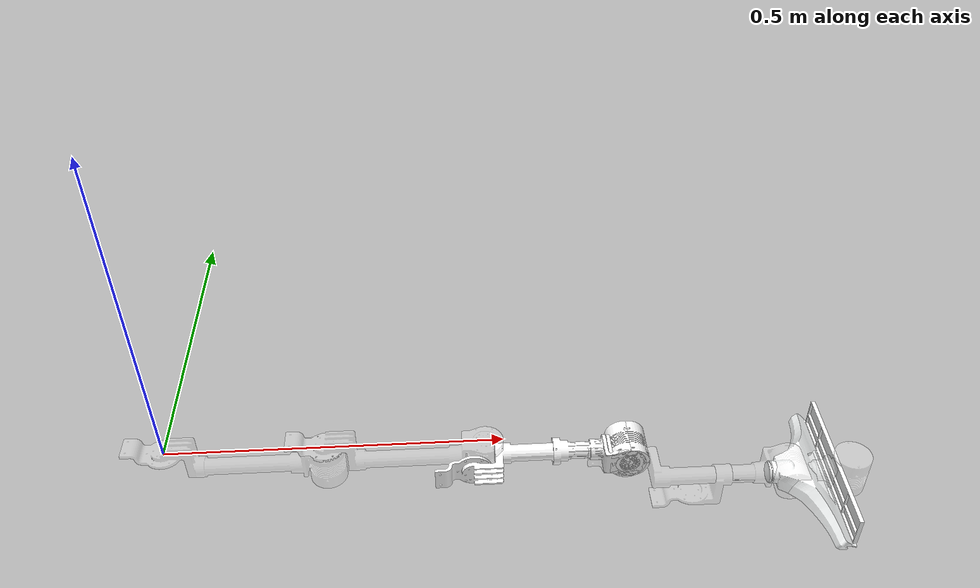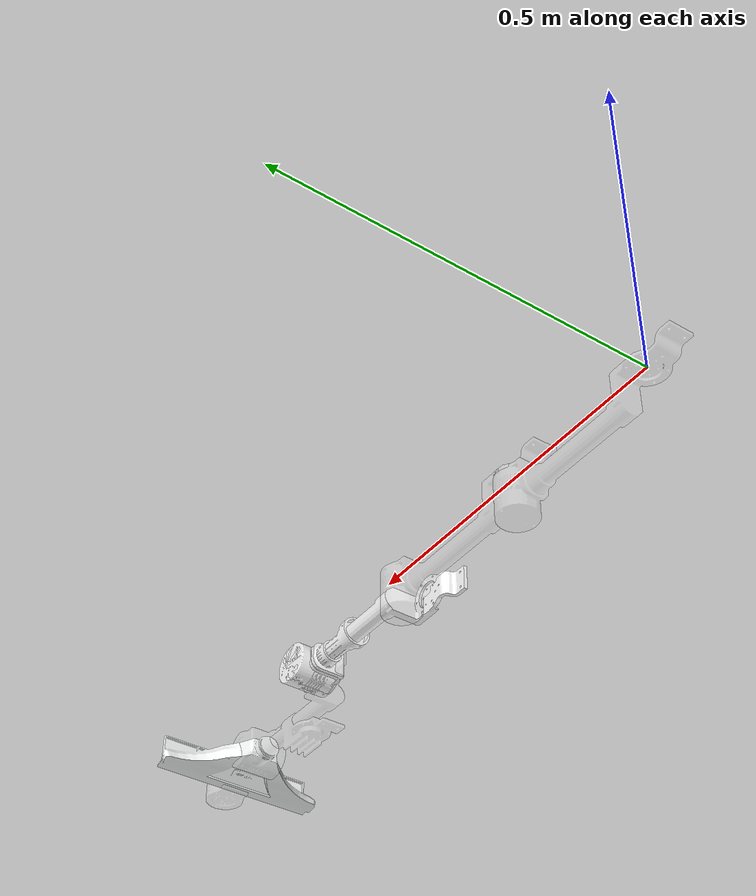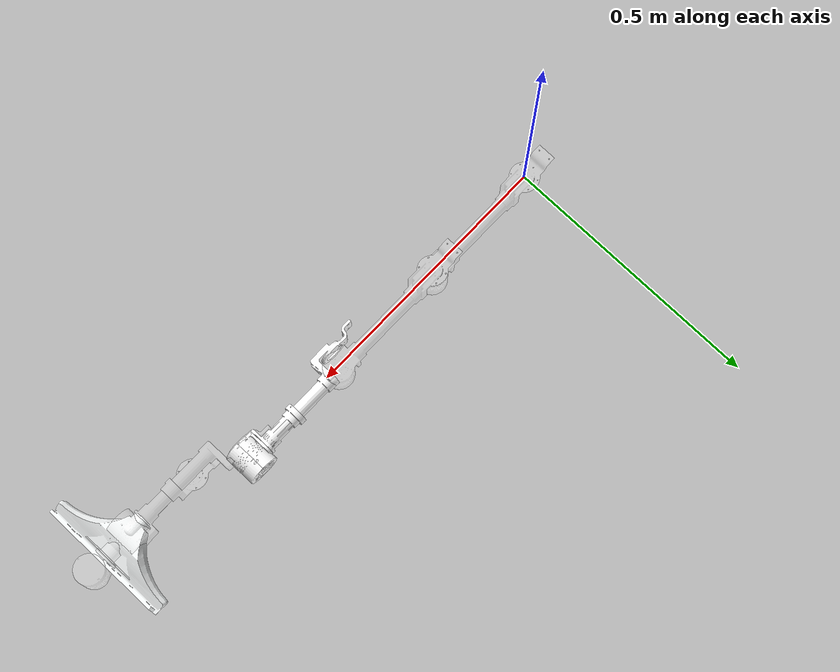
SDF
<?xml version="1.0" encoding="UTF-8"?>
<sdf version='1.9'>
  <model name='w_beta_arm'>
    <link name="robotic_arm_attach_link">
    </link>
    <joint name='servo1_joint' type='revolute'>
      <pose relative_to='robotic_arm_attach_link'>0 0 0 0 0 0</pose>
      <parent>robotic_arm_attach_link</parent>
      <child>servo1_link</child>
      <axis>
        <xyz>0 0 -1</xyz>
        <limit>
          <lower>-1</lower>
          <upper>1</upper>
        </limit>
        <dynamics>
          <damping>1.000</damping>
        </dynamics>
      </axis>
      <physics>
        <ode>
          <implicit_spring_damper>1</implicit_spring_damper>
        </ode>
      </physics>
    </joint>
    <link name='servo1_link'>
      <pose relative_to='servo1_joint'>0 0 0 0 0 0</pose>
      <inertial>
        <pose>0.111922504501582 3.7761597163149699e-05 -0.015143520458418399 0 0 0</pose>
        <mass>0.53</mass>
        <inertia>
          <ixx>6.3660748735162E-04</ixx>
          <ixy>7.50382844572863E-06</ixy>
          <ixz>-2.79781040654546E-03</ixz>
          <iyy>2.39378430755839E-02</iyy>
          <iyz>-1.32710895957586E-06</iyz>
          <izz>2.35111034729351E-02</izz>
        </inertia>
      </inertial>
      <visual name='servo1_link_visual'>
        <pose>0 0 0 0 0 0</pose>
        <geometry>
          <mesh>
            <scale>1 1 1</scale>
            <uri>model://w_beta_arm/meshes/servo1_link.STL</uri>
          </mesh>
        </geometry>
        <material>
          <diffuse>1 1 1 0.25</diffuse>
          <ambient>1 1 1 0.25</ambient>
        </material>
      </visual>
    </link>
    <joint name='servo2_joint' type='revolute'>
      <pose relative_to='servo1_link'>0.23599999999999999 0 0 0 0 0</pose>
      <parent>servo1_link</parent>
      <child>servo2_link</child>
      <axis>
        <xyz>0 0 -1</xyz>
        <limit>
          <lower>-1</lower>
          <upper>1</upper>
        </limit>
        <dynamics>
          <damping>1.000</damping>
        </dynamics>
      </axis>
      <physics>
        <ode>
          <implicit_spring_damper>1</implicit_spring_damper>
        </ode>
      </physics>
    </joint>
    <link name='servo2_link'>
      <pose relative_to='servo2_joint'>0 0 0 0 0 0</pose>
      <inertial>
        <pose>0.134468370827862 -0.0046937223539966202 -0.024660070576773899 0 0 0</pose>
        <mass>0.51</mass>
        <inertia>
          <ixx>7.23978707968121E-04</ixx>
          <ixy>-3.34010261745074E-04</ixy>
          <ixz>-3.11139269036096E-03</ixz>
          <iyy>2.34161975505037E-02</iyy>
          <iyz>4.55704940750211E-05</iyz>
          <izz>2.30392206509604E-02</izz>
        </inertia>
      </inertial>
      <visual name='servo2_link_visual'>
        <pose>0 0 0 0 0 0</pose>
        <geometry>
          <mesh>
            <scale>1 1 1</scale>
            <uri>model://w_beta_arm/meshes/servo2_link.STL</uri>
          </mesh>
        </geometry>
        <material>
          <diffuse>1 1 1 0.25</diffuse>
          <ambient>1 1 1 0.25</ambient>
        </material>
      </visual>
    </link>
    <joint name='servo3_joint' type='revolute'>
      <pose relative_to='servo2_link'>0.217959088643632 -0.030499999999999999 -0.030499999999999899 1.5707963267949003 0 0</pose>
      <parent>servo2_link</parent>
      <child>servo3_link</child>
      <axis>
        <xyz>0 0 -1</xyz>
        <limit>
          <lower>-1</lower>
          <upper>1</upper>
        </limit>
        <dynamics>
          <damping>1.000</damping>
        </dynamics>
      </axis>
      <physics>
        <ode>
          <implicit_spring_damper>1</implicit_spring_damper>
        </ode>
      </physics>
    </joint>
    <link name='servo3_link'>
      <pose relative_to='servo3_joint'>0 0 0 0 0 0</pose>
      <inertial>
        <pose>0.072419292781796998 -0.000294582500038644 -0.012611170864327399 0 0 0</pose>
        <mass>0.42</mass>
        <inertia>
          <ixx>5.29622128377583E-04</ixx>
          <ixy>-1.1241502719062E-05</ixy>
          <ixz>-7.26761015475803E-04</ixz>
          <iyy>2.26659765379103E-03</iyy>
          <iyz>9.14071095220662E-06</iyz>
          <izz>1.92576025786232E-03</izz>
        </inertia>
      </inertial>
      <visual name='servo3_link_visual'>
        <pose>0 0 0 0 0 0</pose>
        <geometry>
          <mesh>
            <scale>1 1 1</scale>
            <uri>model://w_beta_arm/meshes/servo3_link.STL</uri>
          </mesh>
        </geometry>
        <material>
          <diffuse>1 1 1 1</diffuse>
          <ambient>1 1 1 1</ambient>
        </material>
      </visual>
    </link>
    <joint name='servo4_joint' type='revolute'>
      <pose relative_to='servo3_link'>0.118020453905155 0 -0.030500000000001901 1.5707963267949003 -5.5511151231257827e-17 1.5707963267949003</pose>
      <parent>servo3_link</parent>
      <child>servo4_link</child>
      <axis>
        <xyz>0 0 -1</xyz>
        <limit>
          <lower>-1</lower>
          <upper>1</upper>
        </limit>
        <dynamics>
          <damping>1.000</damping>
        </dynamics>
      </axis>
      <physics>
        <ode>
          <implicit_spring_damper>1</implicit_spring_damper>
        </ode>
      </physics>
    </joint>
    <link name='servo4_link'>
      <pose relative_to='servo4_joint'>0 0 0 0 0 0</pose>
      <inertial>
        <pose>-0.000236989073017918 0.0061131275003181596 0.077853501013553594 0 0 0</pose>
        <mass>0.45</mass>
        <inertia>
          <ixx>5.2814333020521E-03</ixx>
          <ixy>6.72719371752209E-06</ixy>
          <ixz>-3.27795100676883E-05</ixz>
          <iyy>5.21349160974916E-03</iyy>
          <iyz>1.54704251151099E-04</iyz>
          <izz>2.67612275522675E-04</izz>
        </inertia>
      </inertial>
      <visual name='servo4_link_visual'>
        <pose>0 0 0 0 0 0</pose>
        <geometry>
          <mesh>
            <scale>1 1 1</scale>
            <uri>model://w_beta_arm/meshes/servo4_link.STL</uri>
          </mesh>
        </geometry>
        <material>
          <diffuse>1 1 1 1</diffuse>
          <ambient>1 1 1 1</ambient>
        </material>
      </visual>
    </link>
    <joint name='servo5_joint' type='revolute'>
      <pose relative_to='servo4_link'>0 0.0305000000000024 0.112 1.5707963267949003 -1.5707963267948966 0</pose>
      <parent>servo4_link</parent>
      <child>servo5_link</child>
      <axis>
        <xyz>0 0 -1</xyz>
        <limit>
          <lower>-1</lower>
          <upper>1</upper>
        </limit>
        <dynamics>
          <damping>1.000</damping>
        </dynamics>
      </axis>
      <physics>
        <ode>
          <implicit_spring_damper>1</implicit_spring_damper>
        </ode>
      </physics>
    </joint>
    <link name='servo5_link'>
      <pose relative_to='servo5_joint'>0 0 0 0 0 0</pose>
      <inertial>
        <pose>0.054629999999999998 0.0042081999999999996 -0.021999000000000001 0 0 0</pose>
        <mass>0.38</mass>
        <inertia>
          <ixx>5.21038184582318E-04</ixx>
          <ixy>1.42474880679905E-04</ixy>
          <ixz>-1.1860199418385E-03</ixz>
          <iyy>4.98659978146248E-03</iyy>
          <iyz>-3.58331885586141E-05</iyz>
          <izz>4.76852299098788E-03</izz>
        </inertia>
      </inertial>
      <visual name='servo5_link_visual'>
        <pose>0 0 0 0 0 0</pose>
        <geometry>
          <mesh>
            <scale>1 1 1</scale>
            <uri>model://w_beta_arm/meshes/servo5_link.STL</uri>
          </mesh>
        </geometry>
        <material>
          <diffuse>1 1 1 0.25</diffuse>
          <ambient>1 1 1 0.25</ambient>
        </material>
      </visual>
    </link>
    <joint name='servo6_joint' type='revolute'>
      <pose relative_to='servo5_link'>0.091499994832627302 0.031649999999999401 -0.030500000593218401 -1.5707963267949003 0 0</pose>
      <parent>servo5_link</parent>
      <child>servo6_link</child>
      <axis>
        <xyz>0 0 -1</xyz>
        <limit>
          <lower>-1</lower>
          <upper>1</upper>
        </limit>
        <dynamics>
          <damping>1.000</damping>
        </dynamics>
      </axis>
      <physics>
        <ode>
          <implicit_spring_damper>1</implicit_spring_damper>
        </ode>
      </physics>
    </joint>
    <link name='servo6_link'>
      <pose relative_to='servo6_joint'>0 0 0 0 0 0</pose>
      <inertial>
        <pose>0.066850657892701101 -1.2832836208220701e-05 -0.010481186641236 0 0 0</pose>
        <mass>0.313</mass>
        <inertia>
          <ixx>3.58437765863175E-04</ixx>
          <ixy>-4.55455431463514E-07</ixy>
          <ixz>-5.07484665310118E-04</ixz>
          <iyy>1.53161435189967E-03</iyy>
          <iyz>3.70892767809497E-07</iyz>
          <izz>1.25730538001629E-03</izz>
        </inertia>
      </inertial>
      <visual name='servo6_link_visual'>
        <pose>0 0 0 0 0 0</pose>
        <geometry>
          <mesh>
            <scale>1 1 1</scale>
            <uri>model://w_beta_arm/meshes/servo6_link.STL</uri>
          </mesh>
        </geometry>
        <material>
          <diffuse>1 1 1 0.25</diffuse>
          <ambient>1 1 1 0.25</ambient>
        </material>
      </visual>
    </link>
    <joint name='servo7_joint' type='revolute'>
      <pose relative_to='servo6_link'>0.1119 0 -0.031699999999999999 3.1415926535897931 1.5707926536359933 3.1415926535897931</pose>
      <parent>servo6_link</parent>
      <child>servo7_link</child>
      <axis>
        <xyz>0 0 -1</xyz>
        <limit>
          <lower>-1</lower>
          <upper>1</upper>
        </limit>
        <dynamics>
          <damping>1.000</damping>
        </dynamics>
      </axis>
      <physics>
        <ode>
          <implicit_spring_damper>1</implicit_spring_damper>
        </ode>
      </physics>
    </joint>
    <link name='servo7_link'>
      <pose relative_to='servo7_joint'>0 0 0 0 0 0</pose>
      <inertial>
        <pose>-0.0077857569447726703 -0.000135487857316625 0.062463903716951902 0 0 0</pose>
        <mass>0.285</mass>
        <inertia>
          <ixx>2.14505981182907E-03</ixx>
          <ixy>-4.53386847421733E-08</ixy>
          <ixz>-1.44964338983573E-04</ixz>
          <iyy>1.38027892636088E-03</iyy>
          <iyz>-3.29337064830304E-06</iyz>
          <izz>8.72029689155727E-04</izz>
        </inertia>
      </inertial>
      <visual name='servo7_link_visual'>
        <pose>0 0 0 0 0 0</pose>
        <geometry>
          <mesh>
            <scale>1 1 1</scale>
            <uri>model://w_beta_arm/meshes/servo7_link.STL</uri>
          </mesh>
        </geometry>
        <material>
          <diffuse>0.990196109 1 1 1</diffuse>
          <ambient>0.990196109 1 1 1</ambient>
        </material>
      </visual>
    </link>
  </model>
</sdf>
